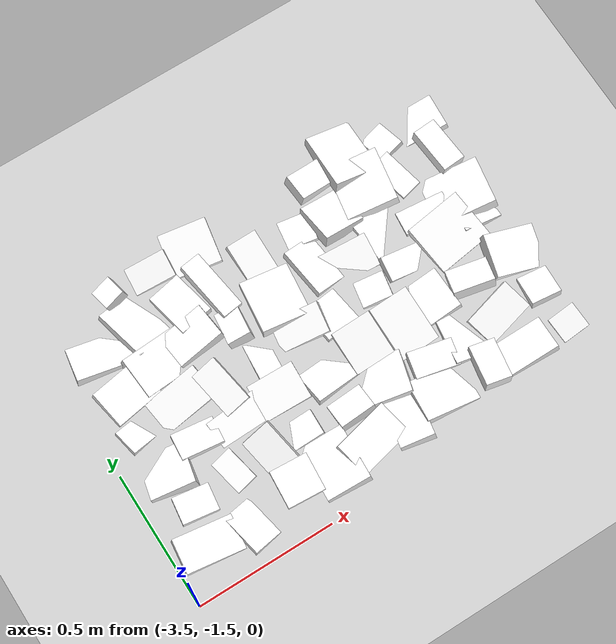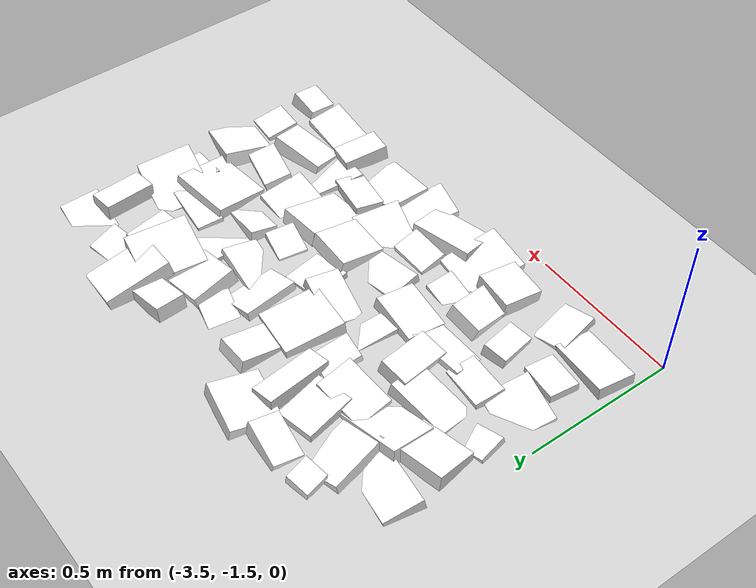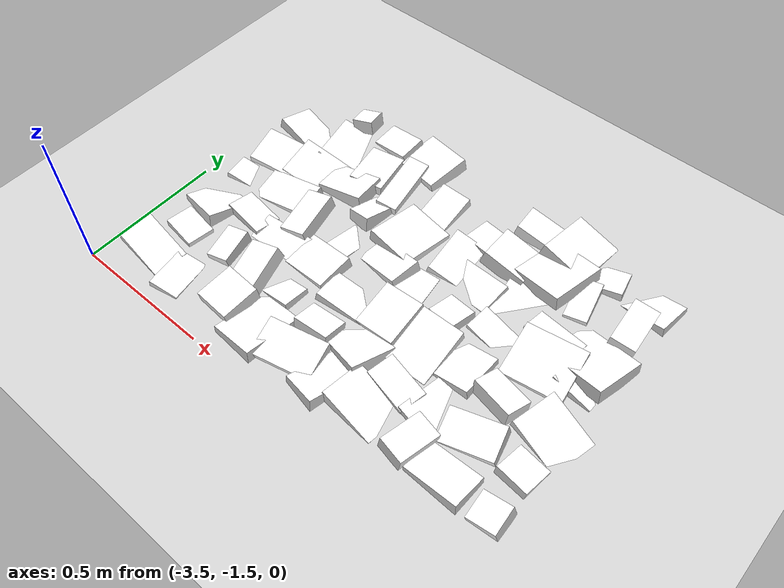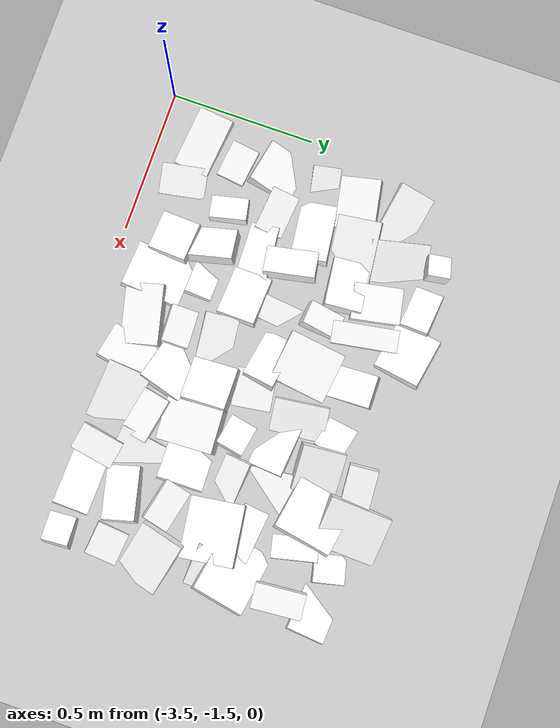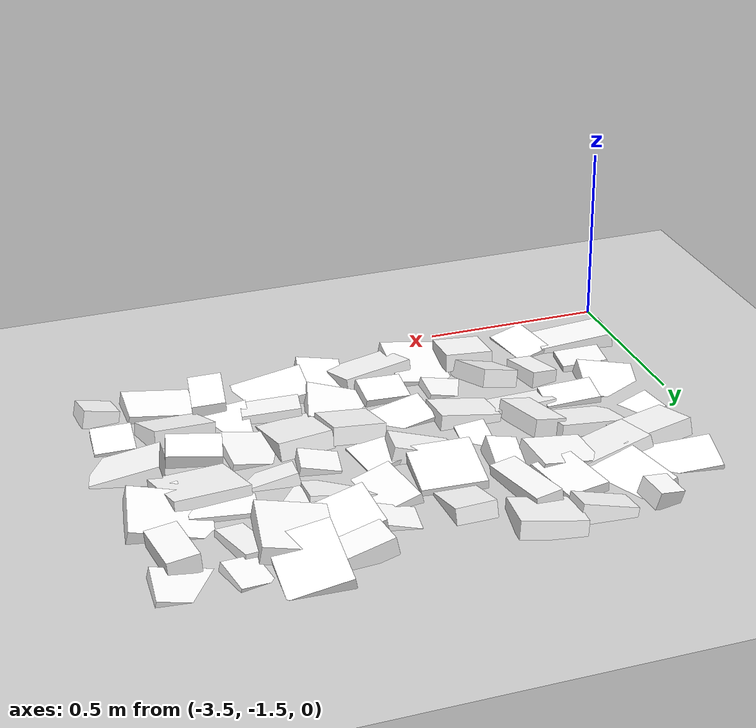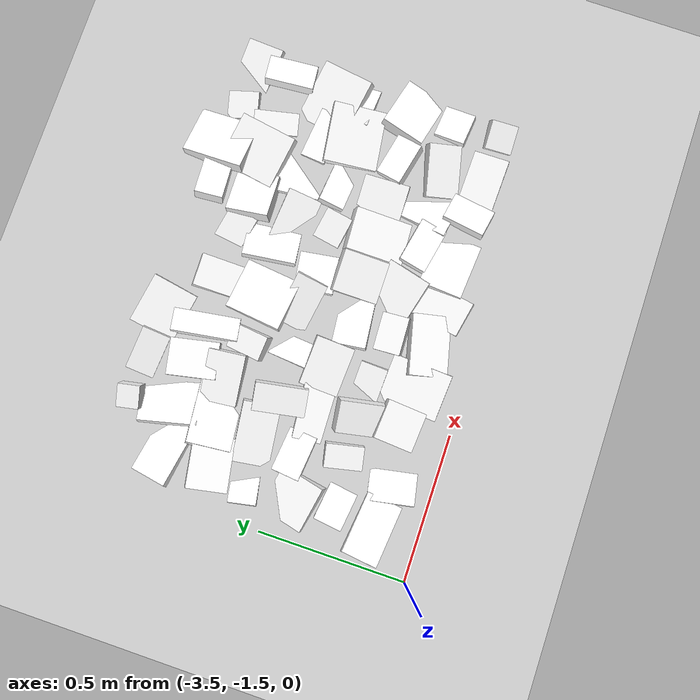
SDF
<sdf version="1.7">
 <world name="default">
  <include><uri>model://sun</uri></include>
  <include><uri>model://ground_plane</uri></include>
  <model name="static_environment">
   <static>true</static>
   <link name="region_260">
    <pose>-2.012675553508905 -0.47357358562478336 -0.0224647102792914 0.11321874112607172 0.20075872885332108 3.0635535067107673</pose>
    <collision name="region_260_collision">
     <geometry><box><size>0.20672837702002833 0.1294654126342675 0.05</size></box></geometry>
     <surface><friction><ode><mu>1.0</mu><mu2>1.0</mu2></ode></friction></surface>
    </collision>
    <visual name="region_260_visual">
     <geometry><box><size>0.20672837702002833 0.1294654126342675 0.05</size></box></geometry>
     <material><ambient>1.0 1.0 1.0 1.0</ambient><diffuse>1.0 1.0 1.0 1.0</diffuse></material>
    </visual>
   </link>
   <link name="region_261">
    <pose>-2.1419157748551947 -0.4742503365675046 -0.01359561527236457 0.161602619967036 0.1303432270375769 3.378786777541902</pose>
    <collision name="region_261_collision">
     <geometry><box><size>0.09550249048365327 0.1080038290938314 0.05</size></box></geometry>
     <surface><friction><ode><mu>1.0</mu><mu2>1.0</mu2></ode></friction></surface>
    </collision>
    <visual name="region_261_visual">
     <geometry><box><size>0.09550249048365327 0.1080038290938314 0.05</size></box></geometry>
     <material><ambient>1.0 1.0 1.0 1.0</ambient><diffuse>1.0 1.0 1.0 1.0</diffuse></material>
    </visual>
   </link>
   <link name="region_262">
    <pose>-2.2913752951553272 -0.44655502818901294 0.010784543503942076 0.2026209814081364 -0.19651298990845978 3.0647916757666396</pose>
    <collision name="region_262_collision">
     <geometry><box><size>0.16763416864392744 0.21866452709255302 0.05</size></box></geometry>
     <surface><friction><ode><mu>1.0</mu><mu2>1.0</mu2></ode></friction></surface>
    </collision>
    <visual name="region_262_visual">
     <geometry><box><size>0.16763416864392744 0.21866452709255302 0.05</size></box></geometry>
     <material><ambient>1.0 1.0 1.0 1.0</ambient><diffuse>1.0 1.0 1.0 1.0</diffuse></material>
    </visual>
   </link>
   <link name="region_263">
    <pose>-2.430436451406939 -0.46541352118537116 0.017323495089113065 -0.032987733629840976 -0.208707993830949 3.225281666458572</pose>
    <collision name="region_263_collision">
     <geometry><box><size>0.14310180446693474 0.09788475142690135 0.05</size></box></geometry>
     <surface><friction><ode><mu>1.0</mu><mu2>1.0</mu2></ode></friction></surface>
    </collision>
    <visual name="region_263_visual">
     <geometry><box><size>0.14310180446693474 0.09788475142690135 0.05</size></box></geometry>
     <material><ambient>1.0 1.0 1.0 1.0</ambient><diffuse>1.0 1.0 1.0 1.0</diffuse></material>
    </visual>
   </link>
   <link name="region_266">
    <pose>-2.903625762493369 -0.45427002583714293 0.009453102744070081 -0.1575869815936991 0.08996931444552764 2.9587360594846306</pose>
    <collision name="region_266_collision">
     <geometry><box><size>0.17262391614225991 0.15989523985767373 0.05</size></box></geometry>
     <surface><friction><ode><mu>1.0</mu><mu2>1.0</mu2></ode></friction></surface>
    </collision>
    <visual name="region_266_visual">
     <geometry><box><size>0.17262391614225991 0.15989523985767373 0.05</size></box></geometry>
     <material><ambient>1.0 1.0 1.0 1.0</ambient><diffuse>1.0 1.0 1.0 1.0</diffuse></material>
    </visual>
   </link>
   <link name="region_267">
    <pose>-3.0572220409544055 -0.45406378967143546 0.0044529102179710345 -0.17875710460485617 0.20783169068785529 3.0301273449079162</pose>
    <collision name="region_267_collision">
     <geometry><box><size>0.14888321037254232 0.09784136209261589 0.05</size></box></geometry>
     <surface><friction><ode><mu>1.0</mu><mu2>1.0</mu2></ode></friction></surface>
    </collision>
    <visual name="region_267_visual">
     <geometry><box><size>0.14888321037254232 0.09784136209261589 0.05</size></box></geometry>
     <material><ambient>1.0 1.0 1.0 1.0</ambient><diffuse>1.0 1.0 1.0 1.0</diffuse></material>
    </visual>
   </link>
   <link name="region_268">
    <pose>-3.2144022520947573 -0.45146995477677454 0.02316407387048617 0.15214157858641508 0.21371732535255883 3.3653557213946286</pose>
    <collision name="region_268_collision">
     <geometry><box><size>0.07835244203209839 0.07867453779901919 0.05</size></box></geometry>
     <surface><friction><ode><mu>1.0</mu><mu2>1.0</mu2></ode></friction></surface>
    </collision>
    <visual name="region_268_visual">
     <geometry><box><size>0.07835244203209839 0.07867453779901919 0.05</size></box></geometry>
     <material><ambient>1.0 1.0 1.0 1.0</ambient><diffuse>1.0 1.0 1.0 1.0</diffuse></material>
    </visual>
   </link>
   <link name="region_280">
    <pose>-1.9956092185757832 -0.5978340545566937 0.024022440196314658 -0.03630735622268233 -0.07347110792262612 3.233420515218902</pose>
    <collision name="region_280_collision">
     <geometry><box><size>0.08622605023401585 0.16987991790743506 0.05</size></box></geometry>
     <surface><friction><ode><mu>1.0</mu><mu2>1.0</mu2></ode></friction></surface>
    </collision>
    <visual name="region_280_visual">
     <geometry><box><size>0.08622605023401585 0.16987991790743506 0.05</size></box></geometry>
     <material><ambient>1.0 1.0 1.0 1.0</ambient><diffuse>1.0 1.0 1.0 1.0</diffuse></material>
    </visual>
   </link>
   <link name="region_281">
    <pose>-2.1711097029448574 -0.5994948865068797 -0.006182176491301122 -0.06926425726745716 0.0958559309275715 3.369725470013116</pose>
    <collision name="region_281_collision">
     <geometry><box><size>0.07885263012762016 0.15590777260964306 0.05</size></box></geometry>
     <surface><friction><ode><mu>1.0</mu><mu2>1.0</mu2></ode></friction></surface>
    </collision>
    <visual name="region_281_visual">
     <geometry><box><size>0.07885263012762016 0.15590777260964306 0.05</size></box></geometry>
     <material><ambient>1.0 1.0 1.0 1.0</ambient><diffuse>1.0 1.0 1.0 1.0</diffuse></material>
    </visual>
   </link>
   <link name="region_282">
    <pose>-2.290364530032395 -0.5775658956635248 0.02242041818681457 0.056505940852751846 0.1694198879536647 2.971285422842018</pose>
    <collision name="region_282_collision">
     <geometry><box><size>0.1838266419605566 0.2012826838375013 0.05</size></box></geometry>
     <surface><friction><ode><mu>1.0</mu><mu2>1.0</mu2></ode></friction></surface>
    </collision>
    <visual name="region_282_visual">
     <geometry><box><size>0.1838266419605566 0.2012826838375013 0.05</size></box></geometry>
     <material><ambient>1.0 1.0 1.0 1.0</ambient><diffuse>1.0 1.0 1.0 1.0</diffuse></material>
    </visual>
   </link>
   <link name="region_283">
    <pose>-2.4398733263689834 -0.6128085157532561 0.009109194233244099 0.18712511660354308 -0.23327573350817654 3.192995660820538</pose>
    <collision name="region_283_collision">
     <geometry><box><size>0.15456354021199564 0.15013109096392785 0.05</size></box></geometry>
     <surface><friction><ode><mu>1.0</mu><mu2>1.0</mu2></ode></friction></surface>
    </collision>
    <visual name="region_283_visual">
     <geometry><box><size>0.15456354021199564 0.15013109096392785 0.05</size></box></geometry>
     <material><ambient>1.0 1.0 1.0 1.0</ambient><diffuse>1.0 1.0 1.0 1.0</diffuse></material>
    </visual>
   </link>
   <link name="region_284">
    <pose>-2.5716137529739633 -0.5885366072029112 -0.018864237875592604 -0.014895747113848168 0.1931162095912472 2.9186418931304634</pose>
    <collision name="region_284_collision">
     <geometry><box><size>0.1419198315460838 0.10416370541356289 0.05</size></box></geometry>
     <surface><friction><ode><mu>1.0</mu><mu2>1.0</mu2></ode></friction></surface>
    </collision>
    <visual name="region_284_visual">
     <geometry><box><size>0.1419198315460838 0.10416370541356289 0.05</size></box></geometry>
     <material><ambient>1.0 1.0 1.0 1.0</ambient><diffuse>1.0 1.0 1.0 1.0</diffuse></material>
    </visual>
   </link>
   <link name="region_285">
    <pose>-2.7431807675866144 -0.5965253076489573 -0.0010340981141326866 -0.2381112555627199 -0.023516576395760547 3.16355343164946</pose>
    <collision name="region_285_collision">
     <geometry><box><size>0.11153765889865792 0.163445667059986 0.05</size></box></geometry>
     <surface><friction><ode><mu>1.0</mu><mu2>1.0</mu2></ode></friction></surface>
    </collision>
    <visual name="region_285_visual">
     <geometry><box><size>0.11153765889865792 0.163445667059986 0.05</size></box></geometry>
     <material><ambient>1.0 1.0 1.0 1.0</ambient><diffuse>1.0 1.0 1.0 1.0</diffuse></material>
    </visual>
   </link>
   <link name="region_286">
    <pose>-2.9151461653719473 -0.6083130332492347 0.01348103339782527 -0.08134957897801037 -0.07942698928212183 3.3056679021762525</pose>
    <collision name="region_286_collision">
     <geometry><box><size>0.07659960688748235 0.22474693963739525 0.05</size></box></geometry>
     <surface><friction><ode><mu>1.0</mu><mu2>1.0</mu2></ode></friction></surface>
    </collision>
    <visual name="region_286_visual">
     <geometry><box><size>0.07659960688748235 0.22474693963739525 0.05</size></box></geometry>
     <material><ambient>1.0 1.0 1.0 1.0</ambient><diffuse>1.0 1.0 1.0 1.0</diffuse></material>
    </visual>
   </link>
   <link name="region_287">
    <pose>-3.034019786990565 -0.6076422209857664 0.0027551248113850957 0.046462898333604785 -0.00784472017490001 3.342600841583706</pose>
    <collision name="region_287_collision">
     <geometry><box><size>0.1251316713293881 0.16814371091625088 0.05</size></box></geometry>
     <surface><friction><ode><mu>1.0</mu><mu2>1.0</mu2></ode></friction></surface>
    </collision>
    <visual name="region_287_visual">
     <geometry><box><size>0.1251316713293881 0.16814371091625088 0.05</size></box></geometry>
     <material><ambient>1.0 1.0 1.0 1.0</ambient><diffuse>1.0 1.0 1.0 1.0</diffuse></material>
    </visual>
   </link>
   <link name="region_288">
    <pose>-3.1985832633287083 -0.5820293688390764 -0.011020049028360918 0.04890830067141366 -0.24467218775949318 3.3649444683952394</pose>
    <collision name="region_288_collision">
     <geometry><box><size>0.14325564510289565 0.20071720479619318 0.05</size></box></geometry>
     <surface><friction><ode><mu>1.0</mu><mu2>1.0</mu2></ode></friction></surface>
    </collision>
    <visual name="region_288_visual">
     <geometry><box><size>0.14325564510289565 0.20071720479619318 0.05</size></box></geometry>
     <material><ambient>1.0 1.0 1.0 1.0</ambient><diffuse>1.0 1.0 1.0 1.0</diffuse></material>
    </visual>
   </link>
   <link name="region_289">
    <pose>-3.346826553852037 -0.6178652347652887 -0.01316610578249073 0.18572736864822897 -0.11090003383661778 2.968527957989617</pose>
    <collision name="region_289_collision">
     <geometry><box><size>0.21339967732118195 0.12634803702589156 0.05</size></box></geometry>
     <surface><friction><ode><mu>1.0</mu><mu2>1.0</mu2></ode></friction></surface>
    </collision>
    <visual name="region_289_visual">
     <geometry><box><size>0.21339967732118195 0.12634803702589156 0.05</size></box></geometry>
     <material><ambient>1.0 1.0 1.0 1.0</ambient><diffuse>1.0 1.0 1.0 1.0</diffuse></material>
    </visual>
   </link>
   <link name="region_300">
    <pose>-2.0275874319909857 -0.7718868269573341 0.0025998203432934727 0.14396942146226221 0.20172164839471274 2.967916459076253</pose>
    <collision name="region_300_collision">
     <geometry><box><size>0.2148009256444085 0.18146035170654004 0.05</size></box></geometry>
     <surface><friction><ode><mu>1.0</mu><mu2>1.0</mu2></ode></friction></surface>
    </collision>
    <visual name="region_300_visual">
     <geometry><box><size>0.2148009256444085 0.18146035170654004 0.05</size></box></geometry>
     <material><ambient>1.0 1.0 1.0 1.0</ambient><diffuse>1.0 1.0 1.0 1.0</diffuse></material>
    </visual>
   </link>
   <link name="region_301">
    <pose>-2.163914714581187 -0.7723364523311476 -0.00949812327403089 0.06606246634643337 0.036687137341491705 3.034825842296338</pose>
    <collision name="region_301_collision">
     <geometry><box><size>0.17829342007056279 0.08755767324457145 0.05</size></box></geometry>
     <surface><friction><ode><mu>1.0</mu><mu2>1.0</mu2></ode></friction></surface>
    </collision>
    <visual name="region_301_visual">
     <geometry><box><size>0.17829342007056279 0.08755767324457145 0.05</size></box></geometry>
     <material><ambient>1.0 1.0 1.0 1.0</ambient><diffuse>1.0 1.0 1.0 1.0</diffuse></material>
    </visual>
   </link>
   <link name="region_302">
    <pose>-2.3188065788338466 -0.7355855824490041 -0.024330679747693845 -0.11286521482567308 -0.1142151249027809 3.267404706671498</pose>
    <collision name="region_302_collision">
     <geometry><box><size>0.15205394928705196 0.2243597180505849 0.05</size></box></geometry>
     <surface><friction><ode><mu>1.0</mu><mu2>1.0</mu2></ode></friction></surface>
    </collision>
    <visual name="region_302_visual">
     <geometry><box><size>0.15205394928705196 0.2243597180505849 0.05</size></box></geometry>
     <material><ambient>1.0 1.0 1.0 1.0</ambient><diffuse>1.0 1.0 1.0 1.0</diffuse></material>
    </visual>
   </link>
   <link name="region_303">
    <pose>-2.4731833551152715 -0.7689185375310553 -0.020562573457839902 -0.19199607893076942 0.1210143721438921 3.0457593261442435</pose>
    <collision name="region_303_collision">
     <geometry><box><size>0.18887123438030895 0.12031872149837258 0.05</size></box></geometry>
     <surface><friction><ode><mu>1.0</mu><mu2>1.0</mu2></ode></friction></surface>
    </collision>
    <visual name="region_303_visual">
     <geometry><box><size>0.18887123438030895 0.12031872149837258 0.05</size></box></geometry>
     <material><ambient>1.0 1.0 1.0 1.0</ambient><diffuse>1.0 1.0 1.0 1.0</diffuse></material>
    </visual>
   </link>
   <link name="region_304">
    <pose>-2.5827450545625266 -0.7266042385539678 -0.012945937606933878 -0.011652353412267724 -0.23530749740273182 3.269728272029941</pose>
    <collision name="region_304_collision">
     <geometry><box><size>0.11781139502868884 0.18575936003575874 0.05</size></box></geometry>
     <surface><friction><ode><mu>1.0</mu><mu2>1.0</mu2></ode></friction></surface>
    </collision>
    <visual name="region_304_visual">
     <geometry><box><size>0.11781139502868884 0.18575936003575874 0.05</size></box></geometry>
     <material><ambient>1.0 1.0 1.0 1.0</ambient><diffuse>1.0 1.0 1.0 1.0</diffuse></material>
    </visual>
   </link>
   <link name="region_305">
    <pose>-2.75593105506357 -0.7597873186036964 0.0037378989806610696 0.09785237822874732 -0.04309117150117914 3.0172445449884213</pose>
    <collision name="region_305_collision">
     <geometry><box><size>0.17538005377421118 0.19675497910294712 0.05</size></box></geometry>
     <surface><friction><ode><mu>1.0</mu><mu2>1.0</mu2></ode></friction></surface>
    </collision>
    <visual name="region_305_visual">
     <geometry><box><size>0.17538005377421118 0.19675497910294712 0.05</size></box></geometry>
     <material><ambient>1.0 1.0 1.0 1.0</ambient><diffuse>1.0 1.0 1.0 1.0</diffuse></material>
    </visual>
   </link>
   <link name="region_306">
    <pose>-2.919888421279893 -0.7647363187469396 0.0031265851461047094 0.24861206126157814 0.18758453731724872 3.057670461128075</pose>
    <collision name="region_306_collision">
     <geometry><box><size>0.08476342565052225 0.12552670415046677 0.05</size></box></geometry>
     <surface><friction><ode><mu>1.0</mu><mu2>1.0</mu2></ode></friction></surface>
    </collision>
    <visual name="region_306_visual">
     <geometry><box><size>0.08476342565052225 0.12552670415046677 0.05</size></box></geometry>
     <material><ambient>1.0 1.0 1.0 1.0</ambient><diffuse>1.0 1.0 1.0 1.0</diffuse></material>
    </visual>
   </link>
   <link name="region_307">
    <pose>-3.0581707030811867 -0.722514744125817 0.00648126652008868 0.09064083214219149 0.18183572324832853 3.2571155508828884</pose>
    <collision name="region_307_collision">
     <geometry><box><size>0.17361020254284515 0.1273255044764846 0.05</size></box></geometry>
     <surface><friction><ode><mu>1.0</mu><mu2>1.0</mu2></ode></friction></surface>
    </collision>
    <visual name="region_307_visual">
     <geometry><box><size>0.17361020254284515 0.1273255044764846 0.05</size></box></geometry>
     <material><ambient>1.0 1.0 1.0 1.0</ambient><diffuse>1.0 1.0 1.0 1.0</diffuse></material>
    </visual>
   </link>
   <link name="region_308">
    <pose>-3.1899474666531438 -0.7367060802923415 -0.009420743093347457 -0.18168560005681667 -0.19793560204198157 3.2619029791178384</pose>
    <collision name="region_308_collision">
     <geometry><box><size>0.21971638210706768 0.15066803202587142 0.05</size></box></geometry>
     <surface><friction><ode><mu>1.0</mu><mu2>1.0</mu2></ode></friction></surface>
    </collision>
    <visual name="region_308_visual">
     <geometry><box><size>0.21971638210706768 0.15066803202587142 0.05</size></box></geometry>
     <material><ambient>1.0 1.0 1.0 1.0</ambient><diffuse>1.0 1.0 1.0 1.0</diffuse></material>
    </visual>
   </link>
   <link name="region_309">
    <pose>-3.3418756587847582 -0.7743471742846786 0.007126255556581716 -0.18397709727504546 -0.069654230347579 3.3277787211058873</pose>
    <collision name="region_309_collision">
     <geometry><box><size>0.1779685319927215 0.13764247144211952 0.05</size></box></geometry>
     <surface><friction><ode><mu>1.0</mu><mu2>1.0</mu2></ode></friction></surface>
    </collision>
    <visual name="region_309_visual">
     <geometry><box><size>0.1779685319927215 0.13764247144211952 0.05</size></box></geometry>
     <material><ambient>1.0 1.0 1.0 1.0</ambient><diffuse>1.0 1.0 1.0 1.0</diffuse></material>
    </visual>
   </link>
   <link name="region_320">
    <pose>-2.0179194164268464 -0.8747499701836824 -0.014045020679501335 0.18602148217697467 -0.1909507863375971 3.072887926421565</pose>
    <collision name="region_320_collision">
     <geometry><box><size>0.14246005988717156 0.076785231022105 0.05</size></box></geometry>
     <surface><friction><ode><mu>1.0</mu><mu2>1.0</mu2></ode></friction></surface>
    </collision>
    <visual name="region_320_visual">
     <geometry><box><size>0.14246005988717156 0.076785231022105 0.05</size></box></geometry>
     <material><ambient>1.0 1.0 1.0 1.0</ambient><diffuse>1.0 1.0 1.0 1.0</diffuse></material>
    </visual>
   </link>
   <link name="region_321">
    <pose>-2.1338066506512843 -0.8737272704068628 0.005262070886405339 -0.17346198940717245 0.0397129740238954 3.277152691041954</pose>
    <collision name="region_321_collision">
     <geometry><box><size>0.20910457040857755 0.18628311979284692 0.05</size></box></geometry>
     <surface><friction><ode><mu>1.0</mu><mu2>1.0</mu2></ode></friction></surface>
    </collision>
    <visual name="region_321_visual">
     <geometry><box><size>0.20910457040857755 0.18628311979284692 0.05</size></box></geometry>
     <material><ambient>1.0 1.0 1.0 1.0</ambient><diffuse>1.0 1.0 1.0 1.0</diffuse></material>
    </visual>
   </link>
   <link name="region_322">
    <pose>-2.2915781307045826 -0.877857078743587 -0.019364257540220677 -0.16455470073523493 -0.21038742882014821 3.0662288807742466</pose>
    <collision name="region_322_collision">
     <geometry><box><size>0.20502785696053707 0.09006972984390338 0.05</size></box></geometry>
     <surface><friction><ode><mu>1.0</mu><mu2>1.0</mu2></ode></friction></surface>
    </collision>
    <visual name="region_322_visual">
     <geometry><box><size>0.20502785696053707 0.09006972984390338 0.05</size></box></geometry>
     <material><ambient>1.0 1.0 1.0 1.0</ambient><diffuse>1.0 1.0 1.0 1.0</diffuse></material>
    </visual>
   </link>
   <link name="region_323">
    <pose>-2.4567103697854864 -0.9080720480675512 -0.007715862728977282 0.05160190533941961 0.1951689356312582 2.961941748557949</pose>
    <collision name="region_323_collision">
     <geometry><box><size>0.10864000511715916 0.09579839884789658 0.05</size></box></geometry>
     <surface><friction><ode><mu>1.0</mu><mu2>1.0</mu2></ode></friction></surface>
    </collision>
    <visual name="region_323_visual">
     <geometry><box><size>0.10864000511715916 0.09579839884789658 0.05</size></box></geometry>
     <material><ambient>1.0 1.0 1.0 1.0</ambient><diffuse>1.0 1.0 1.0 1.0</diffuse></material>
    </visual>
   </link>
   <link name="region_324">
    <pose>-2.627553942850731 -0.9036225315402423 -0.015078945648222226 0.021360486095597986 -0.11313920524591442 3.2855481535006787</pose>
    <collision name="region_324_collision">
     <geometry><box><size>0.1316782028865229 0.13334192100901296 0.05</size></box></geometry>
     <surface><friction><ode><mu>1.0</mu><mu2>1.0</mu2></ode></friction></surface>
    </collision>
    <visual name="region_324_visual">
     <geometry><box><size>0.1316782028865229 0.13334192100901296 0.05</size></box></geometry>
     <material><ambient>1.0 1.0 1.0 1.0</ambient><diffuse>1.0 1.0 1.0 1.0</diffuse></material>
    </visual>
   </link>
   <link name="region_325">
    <pose>-2.7341152492790433 -0.8859794577609795 -0.002322928977108764 -0.09489127424091298 0.24571694264845906 2.97280771630513</pose>
    <collision name="region_325_collision">
     <geometry><box><size>0.17519138719016555 0.1111644902939429 0.05</size></box></geometry>
     <surface><friction><ode><mu>1.0</mu><mu2>1.0</mu2></ode></friction></surface>
    </collision>
    <visual name="region_325_visual">
     <geometry><box><size>0.17519138719016555 0.1111644902939429 0.05</size></box></geometry>
     <material><ambient>1.0 1.0 1.0 1.0</ambient><diffuse>1.0 1.0 1.0 1.0</diffuse></material>
    </visual>
   </link>
   <link name="region_326">
    <pose>-2.898802215831802 -0.9089999999172744 -0.021957267640894514 0.11318606045318547 -0.08429968116212083 3.0443390476389762</pose>
    <collision name="region_326_collision">
     <geometry><box><size>0.08473252543093251 0.1350270328969755 0.05</size></box></geometry>
     <surface><friction><ode><mu>1.0</mu><mu2>1.0</mu2></ode></friction></surface>
    </collision>
    <visual name="region_326_visual">
     <geometry><box><size>0.08473252543093251 0.1350270328969755 0.05</size></box></geometry>
     <material><ambient>1.0 1.0 1.0 1.0</ambient><diffuse>1.0 1.0 1.0 1.0</diffuse></material>
    </visual>
   </link>
   <link name="region_327">
    <pose>-3.0666662419423893 -0.924146540836147 0.018583258124832185 -0.11307900784483188 0.20840995353699449 3.294826398373872</pose>
    <collision name="region_327_collision">
     <geometry><box><size>0.09509074482598952 0.1773804990077613 0.05</size></box></geometry>
     <surface><friction><ode><mu>1.0</mu><mu2>1.0</mu2></ode></friction></surface>
    </collision>
    <visual name="region_327_visual">
     <geometry><box><size>0.09509074482598952 0.1773804990077613 0.05</size></box></geometry>
     <material><ambient>1.0 1.0 1.0 1.0</ambient><diffuse>1.0 1.0 1.0 1.0</diffuse></material>
    </visual>
   </link>
   <link name="region_328">
    <pose>-3.1984541998747957 -0.8843666212759226 -0.005877937877365243 -0.13405645309189523 0.155707366247001 3.2576509480570306</pose>
    <collision name="region_328_collision">
     <geometry><box><size>0.20530159969009992 0.12581523641172435 0.05</size></box></geometry>
     <surface><friction><ode><mu>1.0</mu><mu2>1.0</mu2></ode></friction></surface>
    </collision>
    <visual name="region_328_visual">
     <geometry><box><size>0.20530159969009992 0.12581523641172435 0.05</size></box></geometry>
     <material><ambient>1.0 1.0 1.0 1.0</ambient><diffuse>1.0 1.0 1.0 1.0</diffuse></material>
    </visual>
   </link>
   <link name="region_329">
    <pose>-3.369559409911786 -0.9061321743123656 -0.023861546780484695 0.06201355195987163 -0.21533324877926546 3.329620724051137</pose>
    <collision name="region_329_collision">
     <geometry><box><size>0.13861890257224174 0.0960372275920972 0.05</size></box></geometry>
     <surface><friction><ode><mu>1.0</mu><mu2>1.0</mu2></ode></friction></surface>
    </collision>
    <visual name="region_329_visual">
     <geometry><box><size>0.13861890257224174 0.0960372275920972 0.05</size></box></geometry>
     <material><ambient>1.0 1.0 1.0 1.0</ambient><diffuse>1.0 1.0 1.0 1.0</diffuse></material>
    </visual>
   </link>
   <link name="region_340">
    <pose>-1.9867725736035495 -1.043419838780527 -0.0038206090812209943 -0.09208480174547456 -0.2497708252217326 2.9168710646961182</pose>
    <collision name="region_340_collision">
     <geometry><box><size>0.18624025735751396 0.1542465656799761 0.05</size></box></geometry>
     <surface><friction><ode><mu>1.0</mu><mu2>1.0</mu2></ode></friction></surface>
    </collision>
    <visual name="region_340_visual">
     <geometry><box><size>0.18624025735751396 0.1542465656799761 0.05</size></box></geometry>
     <material><ambient>1.0 1.0 1.0 1.0</ambient><diffuse>1.0 1.0 1.0 1.0</diffuse></material>
    </visual>
   </link>
   <link name="region_341">
    <pose>-2.164920349139411 -1.0499687818088526 0.018162886812569473 0.20985389723238057 0.05923240027515714 2.9191663089879683</pose>
    <collision name="region_341_collision">
     <geometry><box><size>0.14771594366788984 0.0911280490300668 0.05</size></box></geometry>
     <surface><friction><ode><mu>1.0</mu><mu2>1.0</mu2></ode></friction></surface>
    </collision>
    <visual name="region_341_visual">
     <geometry><box><size>0.14771594366788984 0.0911280490300668 0.05</size></box></geometry>
     <material><ambient>1.0 1.0 1.0 1.0</ambient><diffuse>1.0 1.0 1.0 1.0</diffuse></material>
    </visual>
   </link>
   <link name="region_342">
    <pose>-2.3038895319343715 -1.0356870245007244 -0.012346823428547283 0.08015088961140077 0.18300721137484838 3.166359028986266</pose>
    <collision name="region_342_collision">
     <geometry><box><size>0.1298771043991081 0.15838414141825233 0.05</size></box></geometry>
     <surface><friction><ode><mu>1.0</mu><mu2>1.0</mu2></ode></friction></surface>
    </collision>
    <visual name="region_342_visual">
     <geometry><box><size>0.1298771043991081 0.15838414141825233 0.05</size></box></geometry>
     <material><ambient>1.0 1.0 1.0 1.0</ambient><diffuse>1.0 1.0 1.0 1.0</diffuse></material>
    </visual>
   </link>
   <link name="region_343">
    <pose>-2.4429719021486527 -1.0604377304944825 0.005091516385797114 -0.24101536167389775 -0.06292800724993941 3.1946797299694047</pose>
    <collision name="region_343_collision">
     <geometry><box><size>0.1495758697520982 0.2016661739797373 0.05</size></box></geometry>
     <surface><friction><ode><mu>1.0</mu><mu2>1.0</mu2></ode></friction></surface>
    </collision>
    <visual name="region_343_visual">
     <geometry><box><size>0.1495758697520982 0.2016661739797373 0.05</size></box></geometry>
     <material><ambient>1.0 1.0 1.0 1.0</ambient><diffuse>1.0 1.0 1.0 1.0</diffuse></material>
    </visual>
   </link>
   <link name="region_344">
    <pose>-2.5921118619162615 -1.0453444905278737 0.015364953228947709 -0.22152070609673363 0.09030090934727941 3.146016619060301</pose>
    <collision name="region_344_collision">
     <geometry><box><size>0.14521718814167467 0.15950310742119683 0.05</size></box></geometry>
     <surface><friction><ode><mu>1.0</mu><mu2>1.0</mu2></ode></friction></surface>
    </collision>
    <visual name="region_344_visual">
     <geometry><box><size>0.14521718814167467 0.15950310742119683 0.05</size></box></geometry>
     <material><ambient>1.0 1.0 1.0 1.0</ambient><diffuse>1.0 1.0 1.0 1.0</diffuse></material>
    </visual>
   </link>
   <link name="region_345">
    <pose>-2.7391622239922038 -1.078489122993404 -0.017118594292171403 0.14228479023754387 -0.14307304234167378 3.238763631292351</pose>
    <collision name="region_345_collision">
     <geometry><box><size>0.1831687304821196 0.11696181886587012 0.05</size></box></geometry>
     <surface><friction><ode><mu>1.0</mu><mu2>1.0</mu2></ode></friction></surface>
    </collision>
    <visual name="region_345_visual">
     <geometry><box><size>0.1831687304821196 0.11696181886587012 0.05</size></box></geometry>
     <material><ambient>1.0 1.0 1.0 1.0</ambient><diffuse>1.0 1.0 1.0 1.0</diffuse></material>
    </visual>
   </link>
   <link name="region_346">
    <pose>-2.911514286271955 -1.0356548093997084 -0.003798635101725522 -0.13495422679761904 0.12886120859775468 3.0884899756987014</pose>
    <collision name="region_346_collision">
     <geometry><box><size>0.1692180283577332 0.13432457328536598 0.05</size></box></geometry>
     <surface><friction><ode><mu>1.0</mu><mu2>1.0</mu2></ode></friction></surface>
    </collision>
    <visual name="region_346_visual">
     <geometry><box><size>0.1692180283577332 0.13432457328536598 0.05</size></box></geometry>
     <material><ambient>1.0 1.0 1.0 1.0</ambient><diffuse>1.0 1.0 1.0 1.0</diffuse></material>
    </visual>
   </link>
   <link name="region_347">
    <pose>-3.0652179688488133 -1.0536519779371551 -0.019552885117789656 -0.17997039388051594 0.01079764287703755 3.229311414652098</pose>
    <collision name="region_347_collision">
     <geometry><box><size>0.20704896208905432 0.13059092200293262 0.05</size></box></geometry>
     <surface><friction><ode><mu>1.0</mu><mu2>1.0</mu2></ode></friction></surface>
    </collision>
    <visual name="region_347_visual">
     <geometry><box><size>0.20704896208905432 0.13059092200293262 0.05</size></box></geometry>
     <material><ambient>1.0 1.0 1.0 1.0</ambient><diffuse>1.0 1.0 1.0 1.0</diffuse></material>
    </visual>
   </link>
   <link name="region_348">
    <pose>-3.2245495325904647 -1.030160468931746 -0.008647046149089854 0.10998398926258918 -0.08477919839060954 3.0372869631535333</pose>
    <collision name="region_348_collision">
     <geometry><box><size>0.15152641585333318 0.09743872525553965 0.05</size></box></geometry>
     <surface><friction><ode><mu>1.0</mu><mu2>1.0</mu2></ode></friction></surface>
    </collision>
    <visual name="region_348_visual">
     <geometry><box><size>0.15152641585333318 0.09743872525553965 0.05</size></box></geometry>
     <material><ambient>1.0 1.0 1.0 1.0</ambient><diffuse>1.0 1.0 1.0 1.0</diffuse></material>
    </visual>
   </link>
   <link name="region_349">
    <pose>-3.3602155252876735 -1.0718393943913598 -0.0123961393695117 0.22899941033751686 0.17615490159761948 2.96862254929136</pose>
    <collision name="region_349_collision">
     <geometry><box><size>0.16054179522957449 0.15491246830131916 0.05</size></box></geometry>
     <surface><friction><ode><mu>1.0</mu><mu2>1.0</mu2></ode></friction></surface>
    </collision>
    <visual name="region_349_visual">
     <geometry><box><size>0.16054179522957449 0.15491246830131916 0.05</size></box></geometry>
     <material><ambient>1.0 1.0 1.0 1.0</ambient><diffuse>1.0 1.0 1.0 1.0</diffuse></material>
    </visual>
   </link>
   <link name="region_360">
    <pose>-1.9836033444864283 -1.1953896675647473 -0.005719484239520879 0.18341292898072464 -0.04445712216738196 3.040836931989194</pose>
    <collision name="region_360_collision">
     <geometry><box><size>0.1105542252462416 0.10876882735404735 0.05</size></box></geometry>
     <surface><friction><ode><mu>1.0</mu><mu2>1.0</mu2></ode></friction></surface>
    </collision>
    <visual name="region_360_visual">
     <geometry><box><size>0.1105542252462416 0.10876882735404735 0.05</size></box></geometry>
     <material><ambient>1.0 1.0 1.0 1.0</ambient><diffuse>1.0 1.0 1.0 1.0</diffuse></material>
    </visual>
   </link>
   <link name="region_361">
    <pose>-2.1520900456668457 -1.1988198700797659 0.004532488867962325 -0.20628506015364428 0.14631750771116186 3.3859053959029746</pose>
    <collision name="region_361_collision">
     <geometry><box><size>0.18328154125581833 0.11425271149305985 0.05</size></box></geometry>
     <surface><friction><ode><mu>1.0</mu><mu2>1.0</mu2></ode></friction></surface>
    </collision>
    <visual name="region_361_visual">
     <geometry><box><size>0.18328154125581833 0.11425271149305985 0.05</size></box></geometry>
     <material><ambient>1.0 1.0 1.0 1.0</ambient><diffuse>1.0 1.0 1.0 1.0</diffuse></material>
    </visual>
   </link>
   <link name="region_362">
    <pose>-2.2835533452828916 -1.1971644772926955 -0.023461598337005132 0.08890302837390146 -0.1712931402140747 2.984603408176664</pose>
    <collision name="region_362_collision">
     <geometry><box><size>0.15494180456931853 0.18138050945592613 0.05</size></box></geometry>
     <surface><friction><ode><mu>1.0</mu><mu2>1.0</mu2></ode></friction></surface>
    </collision>
    <visual name="region_362_visual">
     <geometry><box><size>0.15494180456931853 0.18138050945592613 0.05</size></box></geometry>
     <material><ambient>1.0 1.0 1.0 1.0</ambient><diffuse>1.0 1.0 1.0 1.0</diffuse></material>
    </visual>
   </link>
   <link name="region_363">
    <pose>-2.423750314732292 -1.21508401717544 -0.001202013580235868 -0.07464223418974325 -0.0871859517635733 2.9431231626684324</pose>
    <collision name="region_363_collision">
     <geometry><box><size>0.1606569494124243 0.0952979147375257 0.05</size></box></geometry>
     <surface><friction><ode><mu>1.0</mu><mu2>1.0</mu2></ode></friction></surface>
    </collision>
    <visual name="region_363_visual">
     <geometry><box><size>0.1606569494124243 0.0952979147375257 0.05</size></box></geometry>
     <material><ambient>1.0 1.0 1.0 1.0</ambient><diffuse>1.0 1.0 1.0 1.0</diffuse></material>
    </visual>
   </link>
   <link name="region_364">
    <pose>-2.6198878903693075 -1.1817811442470876 -0.014991971553074808 0.15171427919458091 0.23711319101498846 2.897725250741729</pose>
    <collision name="region_364_collision">
     <geometry><box><size>0.2131805096836112 0.1550342165443306 0.05</size></box></geometry>
     <surface><friction><ode><mu>1.0</mu><mu2>1.0</mu2></ode></friction></surface>
    </collision>
    <visual name="region_364_visual">
     <geometry><box><size>0.2131805096836112 0.1550342165443306 0.05</size></box></geometry>
     <material><ambient>1.0 1.0 1.0 1.0</ambient><diffuse>1.0 1.0 1.0 1.0</diffuse></material>
    </visual>
   </link>
   <link name="region_365">
    <pose>-2.740872384706936 -1.2125768728893254 0.002665675435375891 0.2393677817748971 0.06765070319907357 3.1880155506116217</pose>
    <collision name="region_365_collision">
     <geometry><box><size>0.12978840316970247 0.09325644937885247 0.05</size></box></geometry>
     <surface><friction><ode><mu>1.0</mu><mu2>1.0</mu2></ode></friction></surface>
    </collision>
    <visual name="region_365_visual">
     <geometry><box><size>0.12978840316970247 0.09325644937885247 0.05</size></box></geometry>
     <material><ambient>1.0 1.0 1.0 1.0</ambient><diffuse>1.0 1.0 1.0 1.0</diffuse></material>
    </visual>
   </link>
   <link name="region_366">
    <pose>-2.9195657029834137 -1.1894621549768571 -0.019096949380649417 0.08373407601252342 0.2134481479034696 3.11582077115411</pose>
    <collision name="region_366_collision">
     <geometry><box><size>0.1288002241136383 0.09389454918714281 0.05</size></box></geometry>
     <surface><friction><ode><mu>1.0</mu><mu2>1.0</mu2></ode></friction></surface>
    </collision>
    <visual name="region_366_visual">
     <geometry><box><size>0.1288002241136383 0.09389454918714281 0.05</size></box></geometry>
     <material><ambient>1.0 1.0 1.0 1.0</ambient><diffuse>1.0 1.0 1.0 1.0</diffuse></material>
    </visual>
   </link>
   <link name="region_367">
    <pose>-3.039378241710408 -1.1989345276453909 0.022789207155028905 -0.2362906134725427 0.24907221347571268 3.2768198574550897</pose>
    <collision name="region_367_collision">
     <geometry><box><size>0.10908981104270264 0.1699132981823509 0.05</size></box></geometry>
     <surface><friction><ode><mu>1.0</mu><mu2>1.0</mu2></ode></friction></surface>
    </collision>
    <visual name="region_367_visual">
     <geometry><box><size>0.10908981104270264 0.1699132981823509 0.05</size></box></geometry>
     <material><ambient>1.0 1.0 1.0 1.0</ambient><diffuse>1.0 1.0 1.0 1.0</diffuse></material>
    </visual>
   </link>
   <link name="region_368">
    <pose>-3.1771115803379066 -1.1841060342744898 0.006827463972295583 -0.09725997038380718 0.1393656095831302 3.3402230935280315</pose>
    <collision name="region_368_collision">
     <geometry><box><size>0.07961858126448146 0.1280822309082194 0.05</size></box></geometry>
     <surface><friction><ode><mu>1.0</mu><mu2>1.0</mu2></ode></friction></surface>
    </collision>
    <visual name="region_368_visual">
     <geometry><box><size>0.07961858126448146 0.1280822309082194 0.05</size></box></geometry>
     <material><ambient>1.0 1.0 1.0 1.0</ambient><diffuse>1.0 1.0 1.0 1.0</diffuse></material>
    </visual>
   </link>
   <link name="region_369">
    <pose>-3.3415107960316455 -1.2112208657910304 -0.004973754386147118 0.0016523347635581387 -0.06652152888146134 3.0091314685360304</pose>
    <collision name="region_369_collision">
     <geometry><box><size>0.12897268835703965 0.09766160916954025 0.05</size></box></geometry>
     <surface><friction><ode><mu>1.0</mu><mu2>1.0</mu2></ode></friction></surface>
    </collision>
    <visual name="region_369_visual">
     <geometry><box><size>0.12897268835703965 0.09766160916954025 0.05</size></box></geometry>
     <material><ambient>1.0 1.0 1.0 1.0</ambient><diffuse>1.0 1.0 1.0 1.0</diffuse></material>
    </visual>
   </link>
   <link name="region_380">
    <pose>-1.9727698745190292 -1.3530776690517825 0.008635402400152627 -0.1390682411929018 0.22412332844316635 3.1886188923298002</pose>
    <collision name="region_380_collision">
     <geometry><box><size>0.09943182888425288 0.09365227103292594 0.05</size></box></geometry>
     <surface><friction><ode><mu>1.0</mu><mu2>1.0</mu2></ode></friction></surface>
    </collision>
    <visual name="region_380_visual">
     <geometry><box><size>0.09943182888425288 0.09365227103292594 0.05</size></box></geometry>
     <material><ambient>1.0 1.0 1.0 1.0</ambient><diffuse>1.0 1.0 1.0 1.0</diffuse></material>
    </visual>
   </link>
   <link name="region_381">
    <pose>-2.14129066338283 -1.3469259286848363 -0.006952054297455847 0.13217386379456136 0.1310152576282076 3.123275544009806</pose>
    <collision name="region_381_collision">
     <geometry><box><size>0.18829367870840238 0.12251036009288853 0.05</size></box></geometry>
     <surface><friction><ode><mu>1.0</mu><mu2>1.0</mu2></ode></friction></surface>
    </collision>
    <visual name="region_381_visual">
     <geometry><box><size>0.18829367870840238 0.12251036009288853 0.05</size></box></geometry>
     <material><ambient>1.0 1.0 1.0 1.0</ambient><diffuse>1.0 1.0 1.0 1.0</diffuse></material>
    </visual>
   </link>
   <link name="region_382">
    <pose>-2.2769064093445297 -1.3321881770873876 0.016898804768354682 0.10834108643504248 -0.08892195876383374 2.9568453160553525</pose>
    <collision name="region_382_collision">
     <geometry><box><size>0.09280328865077522 0.14782566655519097 0.05</size></box></geometry>
     <surface><friction><ode><mu>1.0</mu><mu2>1.0</mu2></ode></friction></surface>
    </collision>
    <visual name="region_382_visual">
     <geometry><box><size>0.09280328865077522 0.14782566655519097 0.05</size></box></geometry>
     <material><ambient>1.0 1.0 1.0 1.0</ambient><diffuse>1.0 1.0 1.0 1.0</diffuse></material>
    </visual>
   </link>
   <link name="region_383">
    <pose>-2.458932606254015 -1.3256794411106552 -0.009027249459676534 0.07618715001284909 -0.20571406410576776 3.042901879497627</pose>
    <collision name="region_383_collision">
     <geometry><box><size>0.20141789019803197 0.15008845408142746 0.05</size></box></geometry>
     <surface><friction><ode><mu>1.0</mu><mu2>1.0</mu2></ode></friction></surface>
    </collision>
    <visual name="region_383_visual">
     <geometry><box><size>0.20141789019803197 0.15008845408142746 0.05</size></box></geometry>
     <material><ambient>1.0 1.0 1.0 1.0</ambient><diffuse>1.0 1.0 1.0 1.0</diffuse></material>
    </visual>
   </link>
   <link name="region_384">
    <pose>-2.602698233907909 -1.346327029626766 -0.004485819456452343 0.16151177284888285 0.14303581143965965 2.9608078936545628</pose>
    <collision name="region_384_collision">
     <geometry><box><size>0.12257867528847963 0.17292536947793802 0.05</size></box></geometry>
     <surface><friction><ode><mu>1.0</mu><mu2>1.0</mu2></ode></friction></surface>
    </collision>
    <visual name="region_384_visual">
     <geometry><box><size>0.12257867528847963 0.17292536947793802 0.05</size></box></geometry>
     <material><ambient>1.0 1.0 1.0 1.0</ambient><diffuse>1.0 1.0 1.0 1.0</diffuse></material>
    </visual>
   </link>
   <link name="region_385">
    <pose>-2.741736303499099 -1.3381934464104215 0.007538660170016601 -0.18358570442386068 -0.02688413906325232 3.376321138770746</pose>
    <collision name="region_385_collision">
     <geometry><box><size>0.2075129564331837 0.13224909852342187 0.05</size></box></geometry>
     <surface><friction><ode><mu>1.0</mu><mu2>1.0</mu2></ode></friction></surface>
    </collision>
    <visual name="region_385_visual">
     <geometry><box><size>0.2075129564331837 0.13224909852342187 0.05</size></box></geometry>
     <material><ambient>1.0 1.0 1.0 1.0</ambient><diffuse>1.0 1.0 1.0 1.0</diffuse></material>
    </visual>
   </link>
   <link name="region_386">
    <pose>-2.8851157923967876 -1.3403799637072928 -0.006054144187403417 0.13085168231856126 0.131073547792045 3.0874235556733467</pose>
    <collision name="region_386_collision">
     <geometry><box><size>0.1597312123476201 0.20522254035490414 0.05</size></box></geometry>
     <surface><friction><ode><mu>1.0</mu><mu2>1.0</mu2></ode></friction></surface>
    </collision>
    <visual name="region_386_visual">
     <geometry><box><size>0.1597312123476201 0.20522254035490414 0.05</size></box></geometry>
     <material><ambient>1.0 1.0 1.0 1.0</ambient><diffuse>1.0 1.0 1.0 1.0</diffuse></material>
    </visual>
   </link>
   <link name="region_387">
    <pose>-3.023738562917287 -1.325998139281742 0.02468858223346327 -0.12214696832695493 0.03893806073552808 3.0700182336856954</pose>
    <collision name="region_387_collision">
     <geometry><box><size>0.13446279285208687 0.13435434659277104 0.05</size></box></geometry>
     <surface><friction><ode><mu>1.0</mu><mu2>1.0</mu2></ode></friction></surface>
    </collision>
    <visual name="region_387_visual">
     <geometry><box><size>0.13446279285208687 0.13435434659277104 0.05</size></box></geometry>
     <material><ambient>1.0 1.0 1.0 1.0</ambient><diffuse>1.0 1.0 1.0 1.0</diffuse></material>
    </visual>
   </link>
   <link name="region_388">
    <pose>-3.2251028154168537 -1.3701133310399167 -0.015203994506202684 0.04924502987315932 -0.15924917171891656 3.3256527813631727</pose>
    <collision name="region_388_collision">
     <geometry><box><size>0.10629879444374417 0.1575314806482742 0.05</size></box></geometry>
     <surface><friction><ode><mu>1.0</mu><mu2>1.0</mu2></ode></friction></surface>
    </collision>
    <visual name="region_388_visual">
     <geometry><box><size>0.10629879444374417 0.1575314806482742 0.05</size></box></geometry>
     <material><ambient>1.0 1.0 1.0 1.0</ambient><diffuse>1.0 1.0 1.0 1.0</diffuse></material>
    </visual>
   </link>
   <link name="region_389">
    <pose>-3.374035782885091 -1.3458170269928402 -0.0022758296952336346 -0.04568716286729019 -0.12431348727855551 3.0235929257180247</pose>
    <collision name="region_389_collision">
     <geometry><box><size>0.2091721621253804 0.12371519316300644 0.05</size></box></geometry>
     <surface><friction><ode><mu>1.0</mu><mu2>1.0</mu2></ode></friction></surface>
    </collision>
    <visual name="region_389_visual">
     <geometry><box><size>0.2091721621253804 0.12371519316300644 0.05</size></box></geometry>
     <material><ambient>1.0 1.0 1.0 1.0</ambient><diffuse>1.0 1.0 1.0 1.0</diffuse></material>
    </visual>
   </link>
  </model>
 </world>
</sdf>
